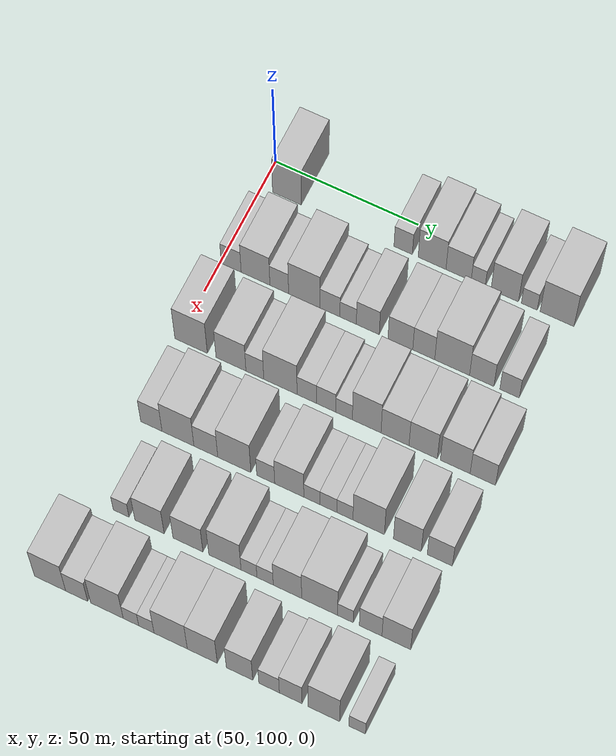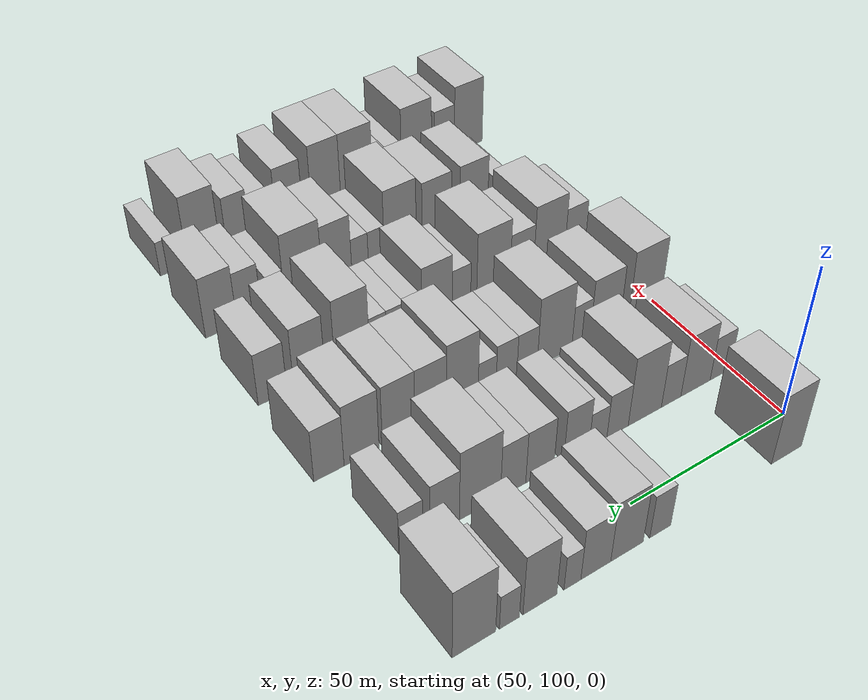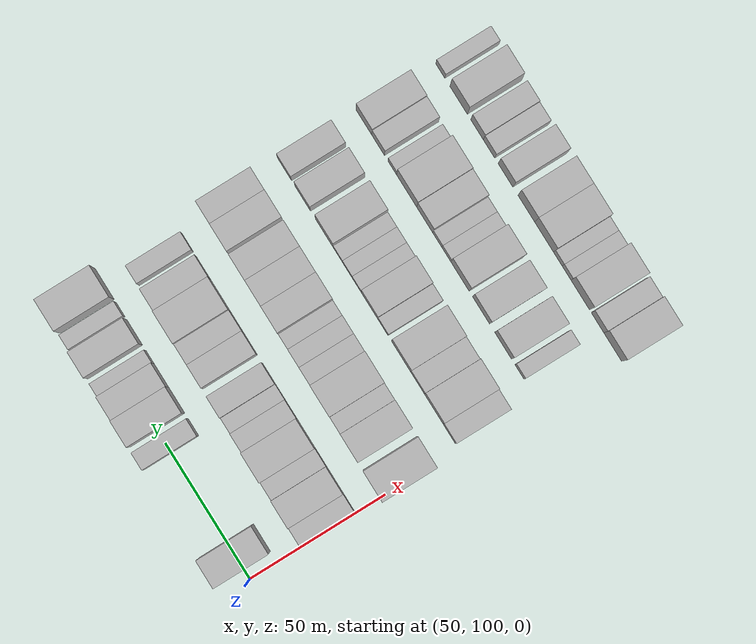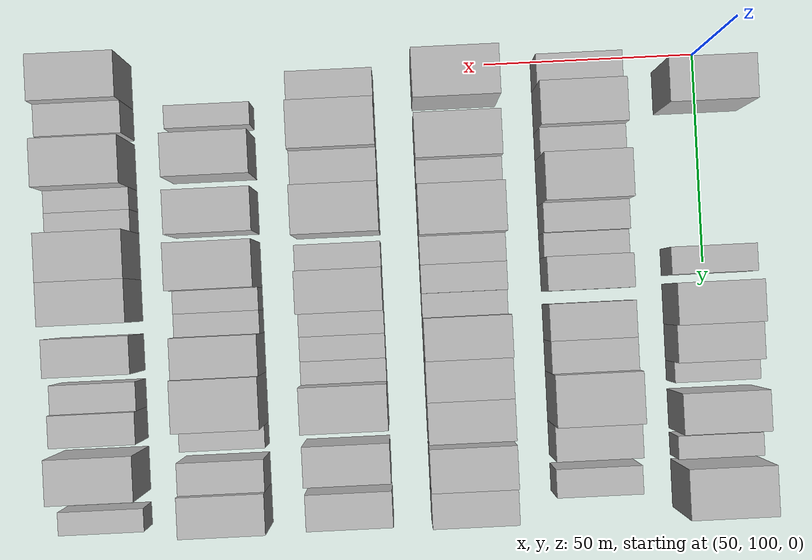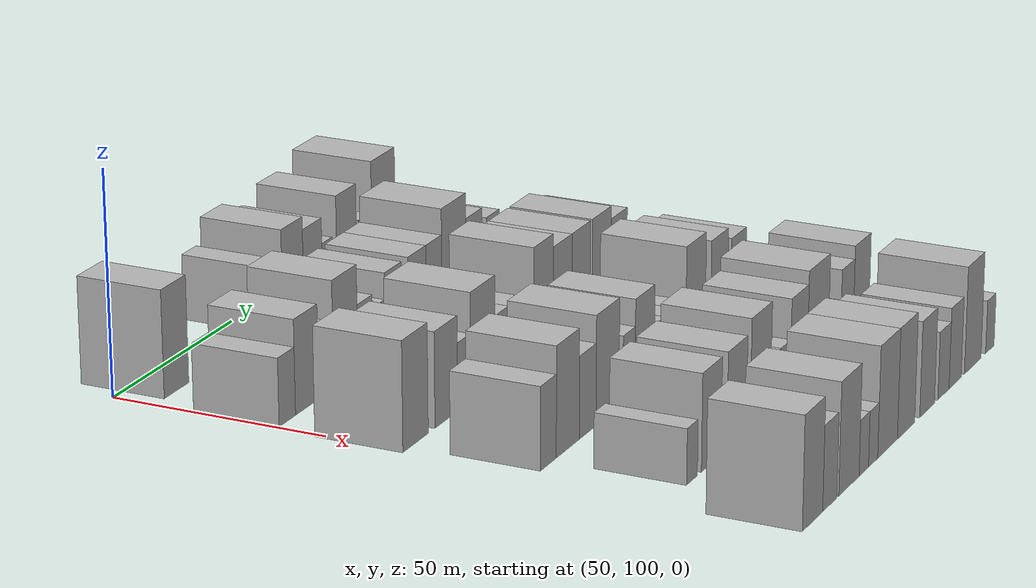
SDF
<sdf version="1.6">
 <world name="default">
  <model name="building_68">
   <static>1</static>
   <pose>50.0000 108.9361 0 0.000000 0.000000 0.000000</pose>
   <link name="link">
    <pose>0 0 12.00 0 0 0</pose>
    <collision name="collision"><geometry><box><size>20.0000 10.1404 24.0000</size></box></geometry></collision>
    <visual name="visual">
     <cast_shadows>0</cast_shadows>
     <geometry><box><size>20.0000 10.1404 24.0000</size></box></geometry>
     <material>
      <script>
       <uri>model://HANNAS_wall/materials/scripts</uri>
       <uri>model://HANNAS_wall/materials/textures</uri>
       <name>vrc/HANNAS_wall</name>
      </script>
     </material>
    </visual>
   </link>
  </model>
  <model name="building_69">
   <static>1</static>
   <pose>50.0000 149.5872 0 0.000000 0.000000 0.000000</pose>
   <link name="link">
    <pose>0 0 7.50 0 0 0</pose>
    <collision name="collision"><geometry><box><size>20.0000 6.3872 15.0000</size></box></geometry></collision>
    <visual name="visual">
     <cast_shadows>0</cast_shadows>
     <geometry><box><size>20.0000 6.3872 15.0000</size></box></geometry>
     <material>
      <script>
       <uri>model://HANNAS_wall/materials/scripts</uri>
       <uri>model://HANNAS_wall/materials/textures</uri>
       <name>vrc/HANNAS_wall</name>
      </script>
     </material>
    </visual>
   </link>
  </model>
  <model name="building_70">
   <static>1</static>
   <pose>50.0000 159.5993 0 0.000000 0.000000 0.000000</pose>
   <link name="link">
    <pose>0 0 10.50 0 0 0</pose>
    <collision name="collision"><geometry><box><size>20.0000 9.6369 21.0000</size></box></geometry></collision>
    <visual name="visual">
     <cast_shadows>0</cast_shadows>
     <geometry><box><size>20.0000 9.6369 21.0000</size></box></geometry>
     <material>
      <script>
       <uri>model://HANNAS_wall/materials/scripts</uri>
       <uri>model://HANNAS_wall/materials/textures</uri>
       <name>vrc/HANNAS_wall</name>
      </script>
     </material>
    </visual>
   </link>
  </model>
  <model name="building_71">
   <static>1</static>
   <pose>50.0000 168.7643 0 0.000000 0.000000 0.000000</pose>
   <link name="link">
    <pose>0 0 9.00 0 0 0</pose>
    <collision name="collision"><geometry><box><size>20.0000 8.6932 18.0000</size></box></geometry></collision>
    <visual name="visual">
     <cast_shadows>0</cast_shadows>
     <geometry><box><size>20.0000 8.6932 18.0000</size></box></geometry>
     <material>
      <script>
       <uri>model://HANNAS_wall/materials/scripts</uri>
       <uri>model://HANNAS_wall/materials/textures</uri>
       <name>vrc/HANNAS_wall</name>
      </script>
     </material>
    </visual>
   </link>
  </model>
  <model name="building_72">
   <static>1</static>
   <pose>50.0000 175.5228 0 0.000000 0.000000 0.000000</pose>
   <link name="link">
    <pose>0 0 6.00 0 0 0</pose>
    <collision name="collision"><geometry><box><size>20.0000 4.8237 12.0000</size></box></geometry></collision>
    <visual name="visual">
     <cast_shadows>0</cast_shadows>
     <geometry><box><size>20.0000 4.8237 12.0000</size></box></geometry>
     <material>
      <script>
       <uri>model://HANNAS_wall/materials/scripts</uri>
       <uri>model://HANNAS_wall/materials/textures</uri>
       <name>vrc/HANNAS_wall</name>
      </script>
     </material>
    </visual>
   </link>
  </model>
  <model name="building_73">
   <static>1</static>
   <pose>50.0000 184.6478 0 0.000000 0.000000 0.000000</pose>
   <link name="link">
    <pose>0 0 10.50 0 0 0</pose>
    <collision name="collision"><geometry><box><size>20.0000 9.4262 21.0000</size></box></geometry></collision>
    <visual name="visual">
     <cast_shadows>0</cast_shadows>
     <geometry><box><size>20.0000 9.4262 21.0000</size></box></geometry>
     <material>
      <script>
       <uri>model://HANNAS_wall/materials/scripts</uri>
       <uri>model://HANNAS_wall/materials/textures</uri>
       <name>vrc/HANNAS_wall</name>
      </script>
     </material>
    </visual>
   </link>
  </model>
  <model name="building_74">
   <static>1</static>
   <pose>50.0000 193.0706 0 0.000000 0.000000 0.000000</pose>
   <link name="link">
    <pose>0 0 6.00 0 0 0</pose>
    <collision name="collision"><geometry><box><size>20.0000 5.4195 12.0000</size></box></geometry></collision>
    <visual name="visual">
     <cast_shadows>0</cast_shadows>
     <geometry><box><size>20.0000 5.4195 12.0000</size></box></geometry>
     <material>
      <script>
       <uri>model://HANNAS_wall/materials/scripts</uri>
       <uri>model://HANNAS_wall/materials/textures</uri>
       <name>vrc/HANNAS_wall</name>
      </script>
     </material>
    </visual>
   </link>
  </model>
  <model name="building_75">
   <static>1</static>
   <pose>50.0000 202.5491 0 0.000000 0.000000 0.000000</pose>
   <link name="link">
    <pose>0 0 12.00 0 0 0</pose>
    <collision name="collision"><geometry><box><size>20.0000 11.5376 24.0000</size></box></geometry></collision>
    <visual name="visual">
     <cast_shadows>0</cast_shadows>
     <geometry><box><size>20.0000 11.5376 24.0000</size></box></geometry>
     <material>
      <script>
       <uri>model://HANNAS_wall/materials/scripts</uri>
       <uri>model://HANNAS_wall/materials/textures</uri>
       <name>vrc/HANNAS_wall</name>
      </script>
     </material>
    </visual>
   </link>
  </model>
  <model name="building_175">
   <static>1</static>
   <pose>79.0000 103.8304 0 0.000000 0.000000 0.000000</pose>
   <link name="link">
    <pose>0 0 7.50 0 0 0</pose>
    <collision name="collision"><geometry><box><size>20.0000 6.9727 15.0000</size></box></geometry></collision>
    <visual name="visual">
     <cast_shadows>0</cast_shadows>
     <geometry><box><size>20.0000 6.9727 15.0000</size></box></geometry>
     <material>
      <script>
       <uri>model://HANNAS_wall/materials/scripts</uri>
       <uri>model://HANNAS_wall/materials/textures</uri>
       <name>vrc/HANNAS_wall</name>
      </script>
     </material>
    </visual>
   </link>
  </model>
  <model name="building_176">
   <static>1</static>
   <pose>79.0000 112.3336 0 0.000000 0.000000 0.000000</pose>
   <link name="link">
    <pose>0 0 10.50 0 0 0</pose>
    <collision name="collision"><geometry><box><size>20.0000 10.0338 21.0000</size></box></geometry></collision>
    <visual name="visual">
     <cast_shadows>0</cast_shadows>
     <geometry><box><size>20.0000 10.0338 21.0000</size></box></geometry>
     <material>
      <script>
       <uri>model://HANNAS_wall/materials/scripts</uri>
       <uri>model://HANNAS_wall/materials/textures</uri>
       <name>vrc/HANNAS_wall</name>
      </script>
     </material>
    </visual>
   </link>
  </model>
  <model name="building_177">
   <static>1</static>
   <pose>79.0000 120.6049 0 0.000000 0.000000 0.000000</pose>
   <link name="link">
    <pose>0 0 7.50 0 0 0</pose>
    <collision name="collision"><geometry><box><size>20.0000 6.5088 15.0000</size></box></geometry></collision>
    <visual name="visual">
     <cast_shadows>0</cast_shadows>
     <geometry><box><size>20.0000 6.5088 15.0000</size></box></geometry>
     <material>
      <script>
       <uri>model://HANNAS_wall/materials/scripts</uri>
       <uri>model://HANNAS_wall/materials/textures</uri>
       <name>vrc/HANNAS_wall</name>
      </script>
     </material>
    </visual>
   </link>
  </model>
  <model name="building_178">
   <static>1</static>
   <pose>79.0000 129.3182 0 0.000000 0.000000 0.000000</pose>
   <link name="link">
    <pose>0 0 12.00 0 0 0</pose>
    <collision name="collision"><geometry><box><size>20.0000 10.9177 24.0000</size></box></geometry></collision>
    <visual name="visual">
     <cast_shadows>0</cast_shadows>
     <geometry><box><size>20.0000 10.9177 24.0000</size></box></geometry>
     <material>
      <script>
       <uri>model://HANNAS_wall/materials/scripts</uri>
       <uri>model://HANNAS_wall/materials/textures</uri>
       <name>vrc/HANNAS_wall</name>
      </script>
     </material>
    </visual>
   </link>
  </model>
  <model name="building_179">
   <static>1</static>
   <pose>79.0000 138.2086 0 0.000000 0.000000 0.000000</pose>
   <link name="link">
    <pose>0 0 7.50 0 0 0</pose>
    <collision name="collision"><geometry><box><size>20.0000 6.8632 15.0000</size></box></geometry></collision>
    <visual name="visual">
     <cast_shadows>0</cast_shadows>
     <geometry><box><size>20.0000 6.8632 15.0000</size></box></geometry>
     <material>
      <script>
       <uri>model://HANNAS_wall/materials/scripts</uri>
       <uri>model://HANNAS_wall/materials/textures</uri>
       <name>vrc/HANNAS_wall</name>
      </script>
     </material>
    </visual>
   </link>
  </model>
  <model name="building_180">
   <static>1</static>
   <pose>79.0000 144.4731 0 0.000000 0.000000 0.000000</pose>
   <link name="link">
    <pose>0 0 6.00 0 0 0</pose>
    <collision name="collision"><geometry><box><size>20.0000 5.6658 12.0000</size></box></geometry></collision>
    <visual name="visual">
     <cast_shadows>0</cast_shadows>
     <geometry><box><size>20.0000 5.6658 12.0000</size></box></geometry>
     <material>
      <script>
       <uri>model://HANNAS_wall/materials/scripts</uri>
       <uri>model://HANNAS_wall/materials/textures</uri>
       <name>vrc/HANNAS_wall</name>
      </script>
     </material>
    </visual>
   </link>
  </model>
  <model name="building_181">
   <static>1</static>
   <pose>79.0000 151.2581 0 0.000000 0.000000 0.000000</pose>
   <link name="link">
    <pose>0 0 9.00 0 0 0</pose>
    <collision name="collision"><geometry><box><size>20.0000 7.9043 18.0000</size></box></geometry></collision>
    <visual name="visual">
     <cast_shadows>0</cast_shadows>
     <geometry><box><size>20.0000 7.9043 18.0000</size></box></geometry>
     <material>
      <script>
       <uri>model://HANNAS_wall/materials/scripts</uri>
       <uri>model://HANNAS_wall/materials/textures</uri>
       <name>vrc/HANNAS_wall</name>
      </script>
     </material>
    </visual>
   </link>
  </model>
  <model name="building_182">
   <static>1</static>
   <pose>79.0000 162.4595 0 0.000000 0.000000 0.000000</pose>
   <link name="link">
    <pose>0 0 9.00 0 0 0</pose>
    <collision name="collision"><geometry><box><size>20.0000 8.4985 18.0000</size></box></geometry></collision>
    <visual name="visual">
     <cast_shadows>0</cast_shadows>
     <geometry><box><size>20.0000 8.4985 18.0000</size></box></geometry>
     <material>
      <script>
       <uri>model://HANNAS_wall/materials/scripts</uri>
       <uri>model://HANNAS_wall/materials/textures</uri>
       <name>vrc/HANNAS_wall</name>
      </script>
     </material>
    </visual>
   </link>
  </model>
  <model name="building_183">
   <static>1</static>
   <pose>79.0000 170.4648 0 0.000000 0.000000 0.000000</pose>
   <link name="link">
    <pose>0 0 9.00 0 0 0</pose>
    <collision name="collision"><geometry><box><size>20.0000 7.5121 18.0000</size></box></geometry></collision>
    <visual name="visual">
     <cast_shadows>0</cast_shadows>
     <geometry><box><size>20.0000 7.5121 18.0000</size></box></geometry>
     <material>
      <script>
       <uri>model://HANNAS_wall/materials/scripts</uri>
       <uri>model://HANNAS_wall/materials/textures</uri>
       <name>vrc/HANNAS_wall</name>
      </script>
     </material>
    </visual>
   </link>
  </model>
  <model name="building_184">
   <static>1</static>
   <pose>79.0000 180.1607 0 0.000000 0.000000 0.000000</pose>
   <link name="link">
    <pose>0 0 12.00 0 0 0</pose>
    <collision name="collision"><geometry><box><size>20.0000 11.8796 24.0000</size></box></geometry></collision>
    <visual name="visual">
     <cast_shadows>0</cast_shadows>
     <geometry><box><size>20.0000 11.8796 24.0000</size></box></geometry>
     <material>
      <script>
       <uri>model://HANNAS_wall/materials/scripts</uri>
       <uri>model://HANNAS_wall/materials/textures</uri>
       <name>vrc/HANNAS_wall</name>
      </script>
     </material>
    </visual>
   </link>
  </model>
  <model name="building_185">
   <static>1</static>
   <pose>79.0000 190.2335 0 0.000000 0.000000 0.000000</pose>
   <link name="link">
    <pose>0 0 9.00 0 0 0</pose>
    <collision name="collision"><geometry><box><size>20.0000 8.2661 18.0000</size></box></geometry></collision>
    <visual name="visual">
     <cast_shadows>0</cast_shadows>
     <geometry><box><size>20.0000 8.2661 18.0000</size></box></geometry>
     <material>
      <script>
       <uri>model://HANNAS_wall/materials/scripts</uri>
       <uri>model://HANNAS_wall/materials/textures</uri>
       <name>vrc/HANNAS_wall</name>
      </script>
     </material>
    </visual>
   </link>
  </model>
  <model name="building_186">
   <static>1</static>
   <pose>79.0000 199.6739 0 0.000000 0.000000 0.000000</pose>
   <link name="link">
    <pose>0 0 7.50 0 0 0</pose>
    <collision name="collision"><geometry><box><size>20.0000 6.6147 15.0000</size></box></geometry></collision>
    <visual name="visual">
     <cast_shadows>0</cast_shadows>
     <geometry><box><size>20.0000 6.6147 15.0000</size></box></geometry>
     <material>
      <script>
       <uri>model://HANNAS_wall/materials/scripts</uri>
       <uri>model://HANNAS_wall/materials/textures</uri>
       <name>vrc/HANNAS_wall</name>
      </script>
     </material>
    </visual>
   </link>
  </model>
  <model name="building_284">
   <static>1</static>
   <pose>108.0000 104.5339 0 0.000000 0.000000 0.000000</pose>
   <link name="link">
    <pose>0 0 12.00 0 0 0</pose>
    <collision name="collision"><geometry><box><size>20.0000 11.2841 24.0000</size></box></geometry></collision>
    <visual name="visual">
     <cast_shadows>0</cast_shadows>
     <geometry><box><size>20.0000 11.2841 24.0000</size></box></geometry>
     <material>
      <script>
       <uri>model://HANNAS_wall/materials/scripts</uri>
       <uri>model://HANNAS_wall/materials/textures</uri>
       <name>vrc/HANNAS_wall</name>
      </script>
     </material>
    </visual>
   </link>
  </model>
  <model name="building_285">
   <static>1</static>
   <pose>108.0000 118.3500 0 0.000000 0.000000 0.000000</pose>
   <link name="link">
    <pose>0 0 10.50 0 0 0</pose>
    <collision name="collision"><geometry><box><size>20.0000 10.3482 21.0000</size></box></geometry></collision>
    <visual name="visual">
     <cast_shadows>0</cast_shadows>
     <geometry><box><size>20.0000 10.3482 21.0000</size></box></geometry>
     <material>
      <script>
       <uri>model://HANNAS_wall/materials/scripts</uri>
       <uri>model://HANNAS_wall/materials/textures</uri>
       <name>vrc/HANNAS_wall</name>
      </script>
     </material>
    </visual>
   </link>
  </model>
  <model name="building_286">
   <static>1</static>
   <pose>108.0000 126.5958 0 0.000000 0.000000 0.000000</pose>
   <link name="link">
    <pose>0 0 7.50 0 0 0</pose>
    <collision name="collision"><geometry><box><size>20.0000 6.1435 15.0000</size></box></geometry></collision>
    <visual name="visual">
     <cast_shadows>0</cast_shadows>
     <geometry><box><size>20.0000 6.1435 15.0000</size></box></geometry>
     <material>
      <script>
       <uri>model://HANNAS_wall/materials/scripts</uri>
       <uri>model://HANNAS_wall/materials/textures</uri>
       <name>vrc/HANNAS_wall</name>
      </script>
     </material>
    </visual>
   </link>
  </model>
  <model name="building_287">
   <static>1</static>
   <pose>108.0000 135.4015 0 0.000000 0.000000 0.000000</pose>
   <link name="link">
    <pose>0 0 12.00 0 0 0</pose>
    <collision name="collision"><geometry><box><size>20.0000 11.4679 24.0000</size></box></geometry></collision>
    <visual name="visual">
     <cast_shadows>0</cast_shadows>
     <geometry><box><size>20.0000 11.4679 24.0000</size></box></geometry>
     <material>
      <script>
       <uri>model://HANNAS_wall/materials/scripts</uri>
       <uri>model://HANNAS_wall/materials/textures</uri>
       <name>vrc/HANNAS_wall</name>
      </script>
     </material>
    </visual>
   </link>
  </model>
  <model name="building_288">
   <static>1</static>
   <pose>108.0000 144.4331 0 0.000000 0.000000 0.000000</pose>
   <link name="link">
    <pose>0 0 7.50 0 0 0</pose>
    <collision name="collision"><geometry><box><size>20.0000 6.5953 15.0000</size></box></geometry></collision>
    <visual name="visual">
     <cast_shadows>0</cast_shadows>
     <geometry><box><size>20.0000 6.5953 15.0000</size></box></geometry>
     <material>
      <script>
       <uri>model://HANNAS_wall/materials/scripts</uri>
       <uri>model://HANNAS_wall/materials/textures</uri>
       <name>vrc/HANNAS_wall</name>
      </script>
     </material>
    </visual>
   </link>
  </model>
  <model name="building_289">
   <static>1</static>
   <pose>108.0000 151.0442 0 0.000000 0.000000 0.000000</pose>
   <link name="link">
    <pose>0 0 7.50 0 0 0</pose>
    <collision name="collision"><geometry><box><size>20.0000 6.6268 15.0000</size></box></geometry></collision>
    <visual name="visual">
     <cast_shadows>0</cast_shadows>
     <geometry><box><size>20.0000 6.6268 15.0000</size></box></geometry>
     <material>
      <script>
       <uri>model://HANNAS_wall/materials/scripts</uri>
       <uri>model://HANNAS_wall/materials/textures</uri>
       <name>vrc/HANNAS_wall</name>
      </script>
     </material>
    </visual>
   </link>
  </model>
  <model name="building_290">
   <static>1</static>
   <pose>108.0000 157.1831 0 0.000000 0.000000 0.000000</pose>
   <link name="link">
    <pose>0 0 6.00 0 0 0</pose>
    <collision name="collision"><geometry><box><size>20.0000 5.6512 12.0000</size></box></geometry></collision>
    <visual name="visual">
     <cast_shadows>0</cast_shadows>
     <geometry><box><size>20.0000 5.6512 12.0000</size></box></geometry>
     <material>
      <script>
       <uri>model://HANNAS_wall/materials/scripts</uri>
       <uri>model://HANNAS_wall/materials/textures</uri>
       <name>vrc/HANNAS_wall</name>
      </script>
     </material>
    </visual>
   </link>
  </model>
  <model name="building_291">
   <static>1</static>
   <pose>108.0000 164.8772 0 0.000000 0.000000 0.000000</pose>
   <link name="link">
    <pose>0 0 12.00 0 0 0</pose>
    <collision name="collision"><geometry><box><size>20.0000 9.7370 24.0000</size></box></geometry></collision>
    <visual name="visual">
     <cast_shadows>0</cast_shadows>
     <geometry><box><size>20.0000 9.7370 24.0000</size></box></geometry>
     <material>
      <script>
       <uri>model://HANNAS_wall/materials/scripts</uri>
       <uri>model://HANNAS_wall/materials/textures</uri>
       <name>vrc/HANNAS_wall</name>
      </script>
     </material>
    </visual>
   </link>
  </model>
  <model name="building_292">
   <static>1</static>
   <pose>108.0000 174.4905 0 0.000000 0.000000 0.000000</pose>
   <link name="link">
    <pose>0 0 10.50 0 0 0</pose>
    <collision name="collision"><geometry><box><size>20.0000 9.4895 21.0000</size></box></geometry></collision>
    <visual name="visual">
     <cast_shadows>0</cast_shadows>
     <geometry><box><size>20.0000 9.4895 21.0000</size></box></geometry>
     <material>
      <script>
       <uri>model://HANNAS_wall/materials/scripts</uri>
       <uri>model://HANNAS_wall/materials/textures</uri>
       <name>vrc/HANNAS_wall</name>
      </script>
     </material>
    </visual>
   </link>
  </model>
  <model name="building_293">
   <static>1</static>
   <pose>108.0000 184.0177 0 0.000000 0.000000 0.000000</pose>
   <link name="link">
    <pose>0 0 10.50 0 0 0</pose>
    <collision name="collision"><geometry><box><size>20.0000 9.5649 21.0000</size></box></geometry></collision>
    <visual name="visual">
     <cast_shadows>0</cast_shadows>
     <geometry><box><size>20.0000 9.5649 21.0000</size></box></geometry>
     <material>
      <script>
       <uri>model://HANNAS_wall/materials/scripts</uri>
       <uri>model://HANNAS_wall/materials/textures</uri>
       <name>vrc/HANNAS_wall</name>
      </script>
     </material>
    </visual>
   </link>
  </model>
  <model name="building_294">
   <static>1</static>
   <pose>108.0000 194.8125 0 0.000000 0.000000 0.000000</pose>
   <link name="link">
    <pose>0 0 10.50 0 0 0</pose>
    <collision name="collision"><geometry><box><size>20.0000 10.0248 21.0000</size></box></geometry></collision>
    <visual name="visual">
     <cast_shadows>0</cast_shadows>
     <geometry><box><size>20.0000 10.0248 21.0000</size></box></geometry>
     <material>
      <script>
       <uri>model://HANNAS_wall/materials/scripts</uri>
       <uri>model://HANNAS_wall/materials/textures</uri>
       <name>vrc/HANNAS_wall</name>
      </script>
     </material>
    </visual>
   </link>
  </model>
  <model name="building_295">
   <static>1</static>
   <pose>108.0000 204.0847 0 0.000000 0.000000 0.000000</pose>
   <link name="link">
    <pose>0 0 9.00 0 0 0</pose>
    <collision name="collision"><geometry><box><size>20.0000 8.5195 18.0000</size></box></geometry></collision>
    <visual name="visual">
     <cast_shadows>0</cast_shadows>
     <geometry><box><size>20.0000 8.5195 18.0000</size></box></geometry>
     <material>
      <script>
       <uri>model://HANNAS_wall/materials/scripts</uri>
       <uri>model://HANNAS_wall/materials/textures</uri>
       <name>vrc/HANNAS_wall</name>
      </script>
     </material>
    </visual>
   </link>
  </model>
  <model name="building_402">
   <static>1</static>
   <pose>137.0000 105.6827 0 0.000000 0.000000 0.000000</pose>
   <link name="link">
    <pose>0 0 9.00 0 0 0</pose>
    <collision name="collision"><geometry><box><size>20.0000 7.3345 18.0000</size></box></geometry></collision>
    <visual name="visual">
     <cast_shadows>0</cast_shadows>
     <geometry><box><size>20.0000 7.3345 18.0000</size></box></geometry>
     <material>
      <script>
       <uri>model://HANNAS_wall/materials/scripts</uri>
       <uri>model://HANNAS_wall/materials/textures</uri>
       <name>vrc/HANNAS_wall</name>
      </script>
     </material>
    </visual>
   </link>
  </model>
  <model name="building_403">
   <static>1</static>
   <pose>137.0000 114.8335 0 0.000000 0.000000 0.000000</pose>
   <link name="link">
    <pose>0 0 12.00 0 0 0</pose>
    <collision name="collision"><geometry><box><size>20.0000 10.9670 24.0000</size></box></geometry></collision>
    <visual name="visual">
     <cast_shadows>0</cast_shadows>
     <geometry><box><size>20.0000 10.9670 24.0000</size></box></geometry>
     <material>
      <script>
       <uri>model://HANNAS_wall/materials/scripts</uri>
       <uri>model://HANNAS_wall/materials/textures</uri>
       <name>vrc/HANNAS_wall</name>
      </script>
     </material>
    </visual>
   </link>
  </model>
  <model name="building_404">
   <static>1</static>
   <pose>137.0000 124.3932 0 0.000000 0.000000 0.000000</pose>
   <link name="link">
    <pose>0 0 9.00 0 0 0</pose>
    <collision name="collision"><geometry><box><size>20.0000 8.1525 18.0000</size></box></geometry></collision>
    <visual name="visual">
     <cast_shadows>0</cast_shadows>
     <geometry><box><size>20.0000 8.1525 18.0000</size></box></geometry>
     <material>
      <script>
       <uri>model://HANNAS_wall/materials/scripts</uri>
       <uri>model://HANNAS_wall/materials/textures</uri>
       <name>vrc/HANNAS_wall</name>
      </script>
     </material>
    </visual>
   </link>
  </model>
  <model name="building_405">
   <static>1</static>
   <pose>137.0000 134.1068 0 0.000000 0.000000 0.000000</pose>
   <link name="link">
    <pose>0 0 12.00 0 0 0</pose>
    <collision name="collision"><geometry><box><size>20.0000 11.2747 24.0000</size></box></geometry></collision>
    <visual name="visual">
     <cast_shadows>0</cast_shadows>
     <geometry><box><size>20.0000 11.2747 24.0000</size></box></geometry>
     <material>
      <script>
       <uri>model://HANNAS_wall/materials/scripts</uri>
       <uri>model://HANNAS_wall/materials/textures</uri>
       <name>vrc/HANNAS_wall</name>
      </script>
     </material>
    </visual>
   </link>
  </model>
  <model name="building_406">
   <static>1</static>
   <pose>137.0000 144.8030 0 0.000000 0.000000 0.000000</pose>
   <link name="link">
    <pose>0 0 7.50 0 0 0</pose>
    <collision name="collision"><geometry><box><size>20.0000 6.1178 15.0000</size></box></geometry></collision>
    <visual name="visual">
     <cast_shadows>0</cast_shadows>
     <geometry><box><size>20.0000 6.1178 15.0000</size></box></geometry>
     <material>
      <script>
       <uri>model://HANNAS_wall/materials/scripts</uri>
       <uri>model://HANNAS_wall/materials/textures</uri>
       <name>vrc/HANNAS_wall</name>
      </script>
     </material>
    </visual>
   </link>
  </model>
  <model name="building_407">
   <static>1</static>
   <pose>137.0000 152.7903 0 0.000000 0.000000 0.000000</pose>
   <link name="link">
    <pose>0 0 10.50 0 0 0</pose>
    <collision name="collision"><geometry><box><size>20.0000 9.8567 21.0000</size></box></geometry></collision>
    <visual name="visual">
     <cast_shadows>0</cast_shadows>
     <geometry><box><size>20.0000 9.8567 21.0000</size></box></geometry>
     <material>
      <script>
       <uri>model://HANNAS_wall/materials/scripts</uri>
       <uri>model://HANNAS_wall/materials/textures</uri>
       <name>vrc/HANNAS_wall</name>
      </script>
     </material>
    </visual>
   </link>
  </model>
  <model name="building_408">
   <static>1</static>
   <pose>137.0000 160.4090 0 0.000000 0.000000 0.000000</pose>
   <link name="link">
    <pose>0 0 6.00 0 0 0</pose>
    <collision name="collision"><geometry><box><size>20.0000 5.3807 12.0000</size></box></geometry></collision>
    <visual name="visual">
     <cast_shadows>0</cast_shadows>
     <geometry><box><size>20.0000 5.3807 12.0000</size></box></geometry>
     <material>
      <script>
       <uri>model://HANNAS_wall/materials/scripts</uri>
       <uri>model://HANNAS_wall/materials/textures</uri>
       <name>vrc/HANNAS_wall</name>
      </script>
     </material>
    </visual>
   </link>
  </model>
  <model name="building_409">
   <static>1</static>
   <pose>137.0000 165.9657 0 0.000000 0.000000 0.000000</pose>
   <link name="link">
    <pose>0 0 6.00 0 0 0</pose>
    <collision name="collision"><geometry><box><size>20.0000 5.7328 12.0000</size></box></geometry></collision>
    <visual name="visual">
     <cast_shadows>0</cast_shadows>
     <geometry><box><size>20.0000 5.7328 12.0000</size></box></geometry>
     <material>
      <script>
       <uri>model://HANNAS_wall/materials/scripts</uri>
       <uri>model://HANNAS_wall/materials/textures</uri>
       <name>vrc/HANNAS_wall</name>
      </script>
     </material>
    </visual>
   </link>
  </model>
  <model name="building_410">
   <static>1</static>
   <pose>137.0000 171.5463 0 0.000000 0.000000 0.000000</pose>
   <link name="link">
    <pose>0 0 6.00 0 0 0</pose>
    <collision name="collision"><geometry><box><size>20.0000 5.4285 12.0000</size></box></geometry></collision>
    <visual name="visual">
     <cast_shadows>0</cast_shadows>
     <geometry><box><size>20.0000 5.4285 12.0000</size></box></geometry>
     <material>
      <script>
       <uri>model://HANNAS_wall/materials/scripts</uri>
       <uri>model://HANNAS_wall/materials/textures</uri>
       <name>vrc/HANNAS_wall</name>
      </script>
     </material>
    </visual>
   </link>
  </model>
  <model name="building_411">
   <static>1</static>
   <pose>137.0000 179.5490 0 0.000000 0.000000 0.000000</pose>
   <link name="link">
    <pose>0 0 12.00 0 0 0</pose>
    <collision name="collision"><geometry><box><size>20.0000 10.5768 24.0000</size></box></geometry></collision>
    <visual name="visual">
     <cast_shadows>0</cast_shadows>
     <geometry><box><size>20.0000 10.5768 24.0000</size></box></geometry>
     <material>
      <script>
       <uri>model://HANNAS_wall/materials/scripts</uri>
       <uri>model://HANNAS_wall/materials/textures</uri>
       <name>vrc/HANNAS_wall</name>
      </script>
     </material>
    </visual>
   </link>
  </model>
  <model name="building_412">
   <static>1</static>
   <pose>137.0000 192.4734 0 0.000000 0.000000 0.000000</pose>
   <link name="link">
    <pose>0 0 10.50 0 0 0</pose>
    <collision name="collision"><geometry><box><size>20.0000 9.2720 21.0000</size></box></geometry></collision>
    <visual name="visual">
     <cast_shadows>0</cast_shadows>
     <geometry><box><size>20.0000 9.2720 21.0000</size></box></geometry>
     <material>
      <script>
       <uri>model://HANNAS_wall/materials/scripts</uri>
       <uri>model://HANNAS_wall/materials/textures</uri>
       <name>vrc/HANNAS_wall</name>
      </script>
     </material>
    </visual>
   </link>
  </model>
  <model name="building_413">
   <static>1</static>
   <pose>137.0000 203.2908 0 0.000000 0.000000 0.000000</pose>
   <link name="link">
    <pose>0 0 9.00 0 0 0</pose>
    <collision name="collision"><geometry><box><size>20.0000 8.3627 18.0000</size></box></geometry></collision>
    <visual name="visual">
     <cast_shadows>0</cast_shadows>
     <geometry><box><size>20.0000 8.3627 18.0000</size></box></geometry>
     <material>
      <script>
       <uri>model://HANNAS_wall/materials/scripts</uri>
       <uri>model://HANNAS_wall/materials/textures</uri>
       <name>vrc/HANNAS_wall</name>
      </script>
     </material>
    </visual>
   </link>
  </model>
  <model name="building_518">
   <static>1</static>
   <pose>166.0000 110.3545 0 0.000000 0.000000 0.000000</pose>
   <link name="link">
    <pose>0 0 6.00 0 0 0</pose>
    <collision name="collision"><geometry><box><size>20.0000 5.3643 12.0000</size></box></geometry></collision>
    <visual name="visual">
     <cast_shadows>0</cast_shadows>
     <geometry><box><size>20.0000 5.3643 12.0000</size></box></geometry>
     <material>
      <script>
       <uri>model://HANNAS_wall/materials/scripts</uri>
       <uri>model://HANNAS_wall/materials/textures</uri>
       <name>vrc/HANNAS_wall</name>
      </script>
     </material>
    </visual>
   </link>
  </model>
  <model name="building_519">
   <static>1</static>
   <pose>166.0000 120.0226 0 0.000000 0.000000 0.000000</pose>
   <link name="link">
    <pose>0 0 10.50 0 0 0</pose>
    <collision name="collision"><geometry><box><size>20.0000 9.9720 21.0000</size></box></geometry></collision>
    <visual name="visual">
     <cast_shadows>0</cast_shadows>
     <geometry><box><size>20.0000 9.9720 21.0000</size></box></geometry>
     <material>
      <script>
       <uri>model://HANNAS_wall/materials/scripts</uri>
       <uri>model://HANNAS_wall/materials/textures</uri>
       <name>vrc/HANNAS_wall</name>
      </script>
     </material>
    </visual>
   </link>
  </model>
  <model name="building_520">
   <static>1</static>
   <pose>166.0000 133.0747 0 0.000000 0.000000 0.000000</pose>
   <link name="link">
    <pose>0 0 10.50 0 0 0</pose>
    <collision name="collision"><geometry><box><size>20.0000 10.1322 21.0000</size></box></geometry></collision>
    <visual name="visual">
     <cast_shadows>0</cast_shadows>
     <geometry><box><size>20.0000 10.1322 21.0000</size></box></geometry>
     <material>
      <script>
       <uri>model://HANNAS_wall/materials/scripts</uri>
       <uri>model://HANNAS_wall/materials/textures</uri>
       <name>vrc/HANNAS_wall</name>
      </script>
     </material>
    </visual>
   </link>
  </model>
  <model name="building_521">
   <static>1</static>
   <pose>166.0000 145.5571 0 0.000000 0.000000 0.000000</pose>
   <link name="link">
    <pose>0 0 12.00 0 0 0</pose>
    <collision name="collision"><geometry><box><size>20.0000 10.8326 24.0000</size></box></geometry></collision>
    <visual name="visual">
     <cast_shadows>0</cast_shadows>
     <geometry><box><size>20.0000 10.8326 24.0000</size></box></geometry>
     <material>
      <script>
       <uri>model://HANNAS_wall/materials/scripts</uri>
       <uri>model://HANNAS_wall/materials/textures</uri>
       <name>vrc/HANNAS_wall</name>
      </script>
     </material>
    </visual>
   </link>
  </model>
  <model name="building_522">
   <static>1</static>
   <pose>166.0000 153.6445 0 0.000000 0.000000 0.000000</pose>
   <link name="link">
    <pose>0 0 6.00 0 0 0</pose>
    <collision name="collision"><geometry><box><size>20.0000 5.3422 12.0000</size></box></geometry></collision>
    <visual name="visual">
     <cast_shadows>0</cast_shadows>
     <geometry><box><size>20.0000 5.3422 12.0000</size></box></geometry>
     <material>
      <script>
       <uri>model://HANNAS_wall/materials/scripts</uri>
       <uri>model://HANNAS_wall/materials/textures</uri>
       <name>vrc/HANNAS_wall</name>
      </script>
     </material>
    </visual>
   </link>
  </model>
  <model name="building_523">
   <static>1</static>
   <pose>166.0000 159.0457 0 0.000000 0.000000 0.000000</pose>
   <link name="link">
    <pose>0 0 6.00 0 0 0</pose>
    <collision name="collision"><geometry><box><size>20.0000 5.4603 12.0000</size></box></geometry></collision>
    <visual name="visual">
     <cast_shadows>0</cast_shadows>
     <geometry><box><size>20.0000 5.4603 12.0000</size></box></geometry>
     <material>
      <script>
       <uri>model://HANNAS_wall/materials/scripts</uri>
       <uri>model://HANNAS_wall/materials/textures</uri>
       <name>vrc/HANNAS_wall</name>
      </script>
     </material>
    </visual>
   </link>
  </model>
  <model name="building_524">
   <static>1</static>
   <pose>166.0000 166.5235 0 0.000000 0.000000 0.000000</pose>
   <link name="link">
    <pose>0 0 10.50 0 0 0</pose>
    <collision name="collision"><geometry><box><size>20.0000 9.4952 21.0000</size></box></geometry></collision>
    <visual name="visual">
     <cast_shadows>0</cast_shadows>
     <geometry><box><size>20.0000 9.4952 21.0000</size></box></geometry>
     <material>
      <script>
       <uri>model://HANNAS_wall/materials/scripts</uri>
       <uri>model://HANNAS_wall/materials/textures</uri>
       <name>vrc/HANNAS_wall</name>
      </script>
     </material>
    </visual>
   </link>
  </model>
  <model name="building_525">
   <static>1</static>
   <pose>166.0000 177.2479 0 0.000000 0.000000 0.000000</pose>
   <link name="link">
    <pose>0 0 12.00 0 0 0</pose>
    <collision name="collision"><geometry><box><size>20.0000 11.9535 24.0000</size></box></geometry></collision>
    <visual name="visual">
     <cast_shadows>0</cast_shadows>
     <geometry><box><size>20.0000 11.9535 24.0000</size></box></geometry>
     <material>
      <script>
       <uri>model://HANNAS_wall/materials/scripts</uri>
       <uri>model://HANNAS_wall/materials/textures</uri>
       <name>vrc/HANNAS_wall</name>
      </script>
     </material>
    </visual>
   </link>
  </model>
  <model name="building_526">
   <static>1</static>
   <pose>166.0000 185.8276 0 0.000000 0.000000 0.000000</pose>
   <link name="link">
    <pose>0 0 6.00 0 0 0</pose>
    <collision name="collision"><geometry><box><size>20.0000 5.2059 12.0000</size></box></geometry></collision>
    <visual name="visual">
     <cast_shadows>0</cast_shadows>
     <geometry><box><size>20.0000 5.2059 12.0000</size></box></geometry>
     <material>
      <script>
       <uri>model://HANNAS_wall/materials/scripts</uri>
       <uri>model://HANNAS_wall/materials/textures</uri>
       <name>vrc/HANNAS_wall</name>
      </script>
     </material>
    </visual>
   </link>
  </model>
  <model name="building_527">
   <static>1</static>
   <pose>166.0000 194.1802 0 0.000000 0.000000 0.000000</pose>
   <link name="link">
    <pose>0 0 9.00 0 0 0</pose>
    <collision name="collision"><geometry><box><size>20.0000 7.4992 18.0000</size></box></geometry></collision>
    <visual name="visual">
     <cast_shadows>0</cast_shadows>
     <geometry><box><size>20.0000 7.4992 18.0000</size></box></geometry>
     <material>
      <script>
       <uri>model://HANNAS_wall/materials/scripts</uri>
       <uri>model://HANNAS_wall/materials/textures</uri>
       <name>vrc/HANNAS_wall</name>
      </script>
     </material>
    </visual>
   </link>
  </model>
  <model name="building_528">
   <static>1</static>
   <pose>166.0000 202.6551 0 0.000000 0.000000 0.000000</pose>
   <link name="link">
    <pose>0 0 10.50 0 0 0</pose>
    <collision name="collision"><geometry><box><size>20.0000 9.4507 21.0000</size></box></geometry></collision>
    <visual name="visual">
     <cast_shadows>0</cast_shadows>
     <geometry><box><size>20.0000 9.4507 21.0000</size></box></geometry>
     <material>
      <script>
       <uri>model://HANNAS_wall/materials/scripts</uri>
       <uri>model://HANNAS_wall/materials/textures</uri>
       <name>vrc/HANNAS_wall</name>
      </script>
     </material>
    </visual>
   </link>
  </model>
  <model name="building_627">
   <static>1</static>
   <pose>195.0000 101.4723 0 0.000000 0.000000 0.000000</pose>
   <link name="link">
    <pose>0 0 12.00 0 0 0</pose>
    <collision name="collision"><geometry><box><size>20.0000 10.5584 24.0000</size></box></geometry></collision>
    <visual name="visual">
     <cast_shadows>0</cast_shadows>
     <geometry><box><size>20.0000 10.5584 24.0000</size></box></geometry>
     <material>
      <script>
       <uri>model://HANNAS_wall/materials/scripts</uri>
       <uri>model://HANNAS_wall/materials/textures</uri>
       <name>vrc/HANNAS_wall</name>
      </script>
     </material>
    </visual>
   </link>
  </model>
  <model name="building_628">
   <static>1</static>
   <pose>195.0000 110.4838 0 0.000000 0.000000 0.000000</pose>
   <link name="link">
    <pose>0 0 9.00 0 0 0</pose>
    <collision name="collision"><geometry><box><size>20.0000 7.4645 18.0000</size></box></geometry></collision>
    <visual name="visual">
     <cast_shadows>0</cast_shadows>
     <geometry><box><size>20.0000 7.4645 18.0000</size></box></geometry>
     <material>
      <script>
       <uri>model://HANNAS_wall/materials/scripts</uri>
       <uri>model://HANNAS_wall/materials/textures</uri>
       <name>vrc/HANNAS_wall</name>
      </script>
     </material>
    </visual>
   </link>
  </model>
  <model name="building_629">
   <static>1</static>
   <pose>195.0000 120.7027 0 0.000000 0.000000 0.000000</pose>
   <link name="link">
    <pose>0 0 12.00 0 0 0</pose>
    <collision name="collision"><geometry><box><size>20.0000 10.9732 24.0000</size></box></geometry></collision>
    <visual name="visual">
     <cast_shadows>0</cast_shadows>
     <geometry><box><size>20.0000 10.9732 24.0000</size></box></geometry>
     <material>
      <script>
       <uri>model://HANNAS_wall/materials/scripts</uri>
       <uri>model://HANNAS_wall/materials/textures</uri>
       <name>vrc/HANNAS_wall</name>
      </script>
     </material>
    </visual>
   </link>
  </model>
  <model name="building_630">
   <static>1</static>
   <pose>195.0000 128.7973 0 0.000000 0.000000 0.000000</pose>
   <link name="link">
    <pose>0 0 6.00 0 0 0</pose>
    <collision name="collision"><geometry><box><size>20.0000 5.2162 12.0000</size></box></geometry></collision>
    <visual name="visual">
     <cast_shadows>0</cast_shadows>
     <geometry><box><size>20.0000 5.2162 12.0000</size></box></geometry>
     <material>
      <script>
       <uri>model://HANNAS_wall/materials/scripts</uri>
       <uri>model://HANNAS_wall/materials/textures</uri>
       <name>vrc/HANNAS_wall</name>
      </script>
     </material>
    </visual>
   </link>
  </model>
  <model name="building_631">
   <static>1</static>
   <pose>195.0000 133.9758 0 0.000000 0.000000 0.000000</pose>
   <link name="link">
    <pose>0 0 6.00 0 0 0</pose>
    <collision name="collision"><geometry><box><size>20.0000 5.1408 12.0000</size></box></geometry></collision>
    <visual name="visual">
     <cast_shadows>0</cast_shadows>
     <geometry><box><size>20.0000 5.1408 12.0000</size></box></geometry>
     <material>
      <script>
       <uri>model://HANNAS_wall/materials/scripts</uri>
       <uri>model://HANNAS_wall/materials/textures</uri>
       <name>vrc/HANNAS_wall</name>
      </script>
     </material>
    </visual>
   </link>
  </model>
  <model name="building_632">
   <static>1</static>
   <pose>195.0000 142.1165 0 0.000000 0.000000 0.000000</pose>
   <link name="link">
    <pose>0 0 12.00 0 0 0</pose>
    <collision name="collision"><geometry><box><size>20.0000 11.1408 24.0000</size></box></geometry></collision>
    <visual name="visual">
     <cast_shadows>0</cast_shadows>
     <geometry><box><size>20.0000 11.1408 24.0000</size></box></geometry>
     <material>
      <script>
       <uri>model://HANNAS_wall/materials/scripts</uri>
       <uri>model://HANNAS_wall/materials/textures</uri>
       <name>vrc/HANNAS_wall</name>
      </script>
     </material>
    </visual>
   </link>
  </model>
  <model name="building_633">
   <static>1</static>
   <pose>195.0000 152.6745 0 0.000000 0.000000 0.000000</pose>
   <link name="link">
    <pose>0 0 12.00 0 0 0</pose>
    <collision name="collision"><geometry><box><size>20.0000 9.9751 24.0000</size></box></geometry></collision>
    <visual name="visual">
     <cast_shadows>0</cast_shadows>
     <geometry><box><size>20.0000 9.9751 24.0000</size></box></geometry>
     <material>
      <script>
       <uri>model://HANNAS_wall/materials/scripts</uri>
       <uri>model://HANNAS_wall/materials/textures</uri>
       <name>vrc/HANNAS_wall</name>
      </script>
     </material>
    </visual>
   </link>
  </model>
  <model name="building_634">
   <static>1</static>
   <pose>195.0000 165.0442 0 0.000000 0.000000 0.000000</pose>
   <link name="link">
    <pose>0 0 10.50 0 0 0</pose>
    <collision name="collision"><geometry><box><size>20.0000 8.7644 21.0000</size></box></geometry></collision>
    <visual name="visual">
     <cast_shadows>0</cast_shadows>
     <geometry><box><size>20.0000 8.7644 21.0000</size></box></geometry>
     <material>
      <script>
       <uri>model://HANNAS_wall/materials/scripts</uri>
       <uri>model://HANNAS_wall/materials/textures</uri>
       <name>vrc/HANNAS_wall</name>
      </script>
     </material>
    </visual>
   </link>
  </model>
  <model name="building_635">
   <static>1</static>
   <pose>195.0000 174.8188 0 0.000000 0.000000 0.000000</pose>
   <link name="link">
    <pose>0 0 7.50 0 0 0</pose>
    <collision name="collision"><geometry><box><size>20.0000 6.7848 15.0000</size></box></geometry></collision>
    <visual name="visual">
     <cast_shadows>0</cast_shadows>
     <geometry><box><size>20.0000 6.7848 15.0000</size></box></geometry>
     <material>
      <script>
       <uri>model://HANNAS_wall/materials/scripts</uri>
       <uri>model://HANNAS_wall/materials/textures</uri>
       <name>vrc/HANNAS_wall</name>
      </script>
     </material>
    </visual>
   </link>
  </model>
  <model name="building_636">
   <static>1</static>
   <pose>195.0000 181.9470 0 0.000000 0.000000 0.000000</pose>
   <link name="link">
    <pose>0 0 9.00 0 0 0</pose>
    <collision name="collision"><geometry><box><size>20.0000 7.4716 18.0000</size></box></geometry></collision>
    <visual name="visual">
     <cast_shadows>0</cast_shadows>
     <geometry><box><size>20.0000 7.4716 18.0000</size></box></geometry>
     <material>
      <script>
       <uri>model://HANNAS_wall/materials/scripts</uri>
       <uri>model://HANNAS_wall/materials/textures</uri>
       <name>vrc/HANNAS_wall</name>
      </script>
     </material>
    </visual>
   </link>
  </model>
  <model name="building_637">
   <static>1</static>
   <pose>195.0000 192.8756 0 0.000000 0.000000 0.000000</pose>
   <link name="link">
    <pose>0 0 12.00 0 0 0</pose>
    <collision name="collision"><geometry><box><size>20.0000 10.3858 24.0000</size></box></geometry></collision>
    <visual name="visual">
     <cast_shadows>0</cast_shadows>
     <geometry><box><size>20.0000 10.3858 24.0000</size></box></geometry>
     <material>
      <script>
       <uri>model://HANNAS_wall/materials/scripts</uri>
       <uri>model://HANNAS_wall/materials/textures</uri>
       <name>vrc/HANNAS_wall</name>
      </script>
     </material>
    </visual>
   </link>
  </model>
  <model name="building_638">
   <static>1</static>
   <pose>195.0000 203.7818 0 0.000000 0.000000 0.000000</pose>
   <link name="link">
    <pose>0 0 6.00 0 0 0</pose>
    <collision name="collision"><geometry><box><size>20.0000 5.4267 12.0000</size></box></geometry></collision>
    <visual name="visual">
     <cast_shadows>0</cast_shadows>
     <geometry><box><size>20.0000 5.4267 12.0000</size></box></geometry>
     <material>
      <script>
       <uri>model://HANNAS_wall/materials/scripts</uri>
       <uri>model://HANNAS_wall/materials/textures</uri>
       <name>vrc/HANNAS_wall</name>
      </script>
     </material>
    </visual>
   </link>
  </model>
 </world>
</sdf>
